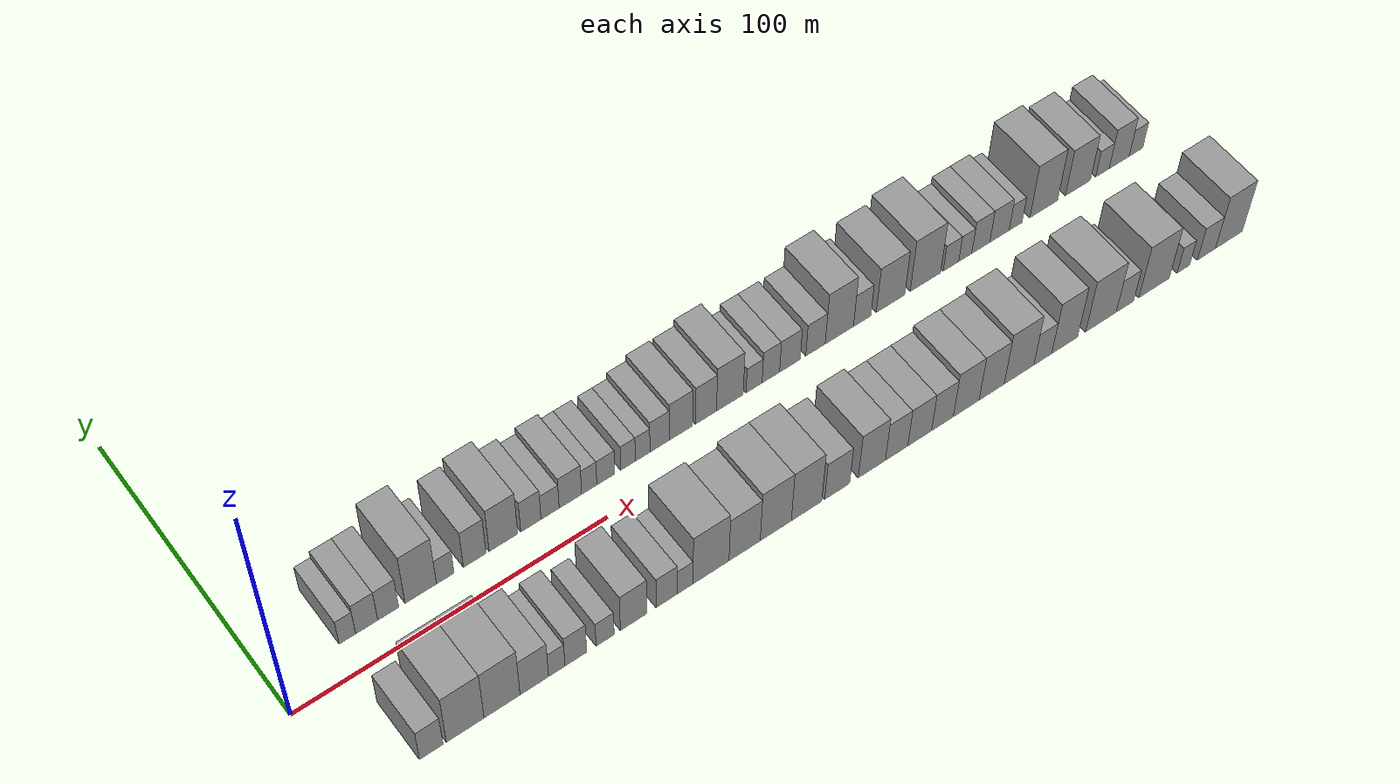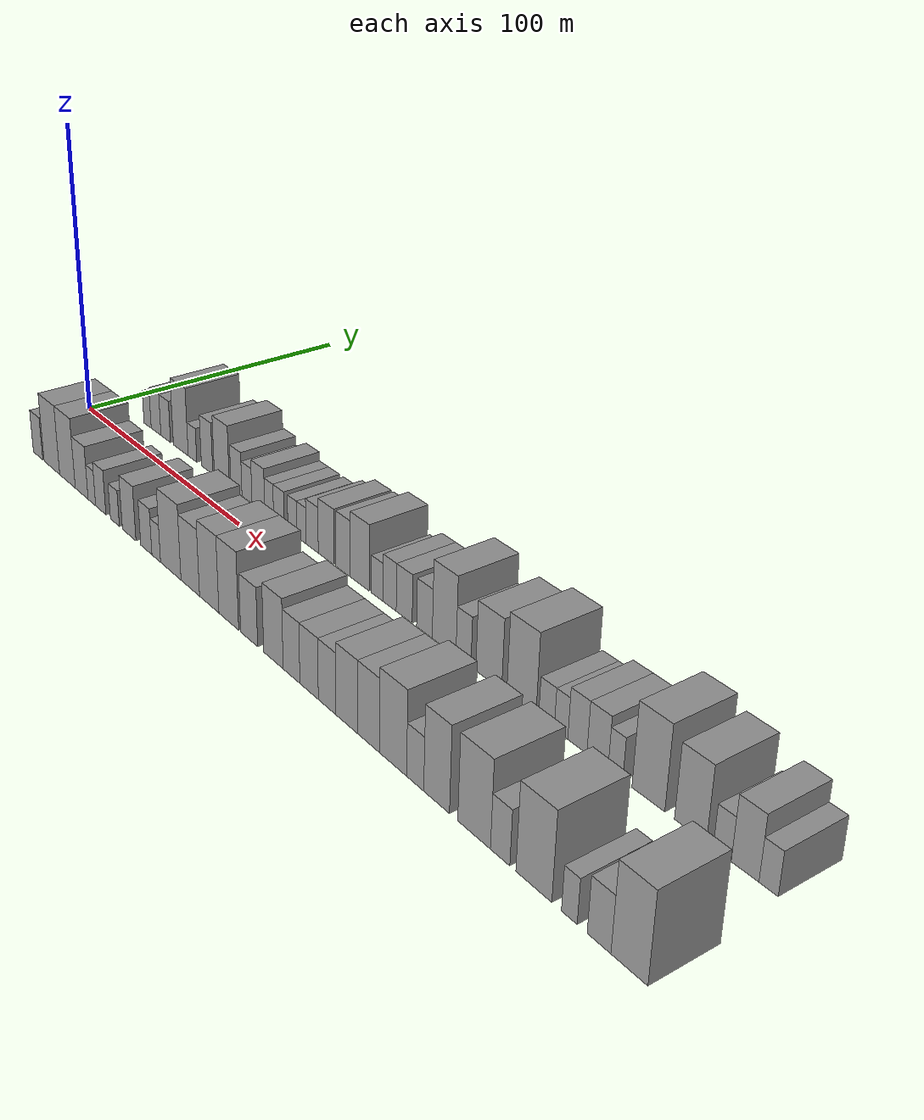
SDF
<sdf version="1.6">
 <world name="default">
  <scene>
   <sky><clouds><speed>12</speed></clouds></sky>
   <ambient>0.4 0.4 0.4 1</ambient>
   <background>0.7 0.7 0.7 1</background>
   <shadows>1</shadows>
  </scene>
  <gravity>0 0 -9.8066</gravity>
  <magnetic_field>6e-06 2.3e-05 -4.2e-05</magnetic_field>
  <physics default="0" name="default_physics" type="ode">
   <ode>
    <solver>
     <type>quick</type>
     <iters>10</iters>
     <sor>1.0</sor>
     <use_dynamic_moi_rescaling>0</use_dynamic_moi_rescaling>
    </solver>
    <constraints>
     <cfm>0</cfm>
     <erp>0.2</erp>
     <contact_max_correcting_vel>100</contact_max_correcting_vel>
     <contact_surface_layer>0.001</contact_surface_layer>
    </constraints>
   </ode>
   <max_step_size>0.004</max_step_size>
   <real_time_factor>1</real_time_factor>
   <real_time_update_rate>250</real_time_update_rate>
  </physics>
  <light name="sun" type="directional">
   <pose>0 0 10 0 0 0</pose>
   <diffuse>0.8 0.8 0.8 1</diffuse>
   <specular>0.2 0.2 0.2 1</specular>
   <attenuation>
    <range>1000</range>
    <constant>0.9</constant>
    <linear>0.01</linear>
    <quadratic>0.001</quadratic>
   </attenuation>
   <direction>-0.5 0.1 -0.9</direction>
  </light>
  <model name="building_1">
   <static>1</static>
   <pose>23.5452 20.0000 0 0.000000 0.000000 1.570796</pose>
   <link name="link">
    <pose>0 0 6.00 0 0 0</pose>
    <collision name="collision"><geometry><box><size>20.0000 5.0905 12.0000</size></box></geometry></collision>
    <visual name="visual">
     <cast_shadows>0</cast_shadows>
     <geometry><box><size>20.0000 5.0905 12.0000</size></box></geometry>
     <material>
      <script>
       <uri>model://grey_wall/materials/scripts</uri>
       <uri>model://grey_wall/materials/textures</uri>
       <name>vrc/grey_wall</name>
      </script>
     </material>
    </visual>
   </link>
  </model>
  <model name="building_2">
   <static>1</static>
   <pose>29.5083 20.0000 0 0.000000 0.000000 1.570796</pose>
   <link name="link">
    <pose>0 0 7.50 0 0 0</pose>
    <collision name="collision"><geometry><box><size>20.0000 6.8357 15.0000</size></box></geometry></collision>
    <visual name="visual">
     <cast_shadows>0</cast_shadows>
     <geometry><box><size>20.0000 6.8357 15.0000</size></box></geometry>
     <material>
      <script>
       <uri>model://grey_wall/materials/scripts</uri>
       <uri>model://grey_wall/materials/textures</uri>
       <name>vrc/grey_wall</name>
      </script>
     </material>
    </visual>
   </link>
  </model>
  <model name="building_3">
   <static>1</static>
   <pose>36.2058 20.0000 0 0.000000 0.000000 1.570796</pose>
   <link name="link">
    <pose>0 0 7.50 0 0 0</pose>
    <collision name="collision"><geometry><box><size>20.0000 6.5593 15.0000</size></box></geometry></collision>
    <visual name="visual">
     <cast_shadows>0</cast_shadows>
     <geometry><box><size>20.0000 6.5593 15.0000</size></box></geometry>
     <material>
      <script>
       <uri>model://grey_wall/materials/scripts</uri>
       <uri>model://grey_wall/materials/textures</uri>
       <name>vrc/grey_wall</name>
      </script>
     </material>
    </visual>
   </link>
  </model>
  <model name="building_4">
   <static>1</static>
   <pose>46.4267 20.0000 0 0.000000 0.000000 1.570796</pose>
   <link name="link">
    <pose>0 0 12.00 0 0 0</pose>
    <collision name="collision"><geometry><box><size>20.0000 9.8826 24.0000</size></box></geometry></collision>
    <visual name="visual">
     <cast_shadows>0</cast_shadows>
     <geometry><box><size>20.0000 9.8826 24.0000</size></box></geometry>
     <material>
      <script>
       <uri>model://grey_wall/materials/scripts</uri>
       <uri>model://grey_wall/materials/textures</uri>
       <name>vrc/grey_wall</name>
      </script>
     </material>
    </visual>
   </link>
  </model>
  <model name="building_5">
   <static>1</static>
   <pose>54.1531 20.0000 0 0.000000 0.000000 1.570796</pose>
   <link name="link">
    <pose>0 0 6.00 0 0 0</pose>
    <collision name="collision"><geometry><box><size>20.0000 5.5703 12.0000</size></box></geometry></collision>
    <visual name="visual">
     <cast_shadows>0</cast_shadows>
     <geometry><box><size>20.0000 5.5703 12.0000</size></box></geometry>
     <material>
      <script>
       <uri>model://grey_wall/materials/scripts</uri>
       <uri>model://grey_wall/materials/textures</uri>
       <name>vrc/grey_wall</name>
      </script>
     </material>
    </visual>
   </link>
  </model>
  <model name="building_6">
   <static>1</static>
   <pose>63.5615 20.0000 0 0.000000 0.000000 1.570796</pose>
   <link name="link">
    <pose>0 0 9.00 0 0 0</pose>
    <collision name="collision"><geometry><box><size>20.0000 7.2466 18.0000</size></box></geometry></collision>
    <visual name="visual">
     <cast_shadows>0</cast_shadows>
     <geometry><box><size>20.0000 7.2466 18.0000</size></box></geometry>
     <material>
      <script>
       <uri>model://grey_wall/materials/scripts</uri>
       <uri>model://grey_wall/materials/textures</uri>
       <name>vrc/grey_wall</name>
      </script>
     </material>
    </visual>
   </link>
  </model>
  <model name="building_7">
   <static>1</static>
   <pose>72.8070 20.0000 0 0.000000 0.000000 1.570796</pose>
   <link name="link">
    <pose>0 0 10.50 0 0 0</pose>
    <collision name="collision"><geometry><box><size>20.0000 9.2444 21.0000</size></box></geometry></collision>
    <visual name="visual">
     <cast_shadows>0</cast_shadows>
     <geometry><box><size>20.0000 9.2444 21.0000</size></box></geometry>
     <material>
      <script>
       <uri>model://grey_wall/materials/scripts</uri>
       <uri>model://grey_wall/materials/textures</uri>
       <name>vrc/grey_wall</name>
      </script>
     </material>
    </visual>
   </link>
  </model>
  <model name="building_8">
   <static>1</static>
   <pose>81.7254 20.0000 0 0.000000 0.000000 1.570796</pose>
   <link name="link">
    <pose>0 0 7.50 0 0 0</pose>
    <collision name="collision"><geometry><box><size>20.0000 6.5924 15.0000</size></box></geometry></collision>
    <visual name="visual">
     <cast_shadows>0</cast_shadows>
     <geometry><box><size>20.0000 6.5924 15.0000</size></box></geometry>
     <material>
      <script>
       <uri>model://grey_wall/materials/scripts</uri>
       <uri>model://grey_wall/materials/textures</uri>
       <name>vrc/grey_wall</name>
      </script>
     </material>
    </visual>
   </link>
  </model>
  <model name="building_9">
   <static>1</static>
   <pose>87.9942 20.0000 0 0.000000 0.000000 1.570796</pose>
   <link name="link">
    <pose>0 0 6.00 0 0 0</pose>
    <collision name="collision"><geometry><box><size>20.0000 5.9452 12.0000</size></box></geometry></collision>
    <visual name="visual">
     <cast_shadows>0</cast_shadows>
     <geometry><box><size>20.0000 5.9452 12.0000</size></box></geometry>
     <material>
      <script>
       <uri>model://grey_wall/materials/scripts</uri>
       <uri>model://grey_wall/materials/textures</uri>
       <name>vrc/grey_wall</name>
      </script>
     </material>
    </visual>
   </link>
  </model>
  <model name="building_10">
   <static>1</static>
   <pose>94.6655 20.0000 0 0.000000 0.000000 1.570796</pose>
   <link name="link">
    <pose>0 0 7.50 0 0 0</pose>
    <collision name="collision"><geometry><box><size>20.0000 7.3974 15.0000</size></box></geometry></collision>
    <visual name="visual">
     <cast_shadows>0</cast_shadows>
     <geometry><box><size>20.0000 7.3974 15.0000</size></box></geometry>
     <material>
      <script>
       <uri>model://grey_wall/materials/scripts</uri>
       <uri>model://grey_wall/materials/textures</uri>
       <name>vrc/grey_wall</name>
      </script>
     </material>
    </visual>
   </link>
  </model>
  <model name="building_11">
   <static>1</static>
   <pose>100.8746 20.0000 0 0.000000 0.000000 1.570796</pose>
   <link name="link">
    <pose>0 0 6.00 0 0 0</pose>
    <collision name="collision"><geometry><box><size>20.0000 5.0209 12.0000</size></box></geometry></collision>
    <visual name="visual">
     <cast_shadows>0</cast_shadows>
     <geometry><box><size>20.0000 5.0209 12.0000</size></box></geometry>
     <material>
      <script>
       <uri>model://grey_wall/materials/scripts</uri>
       <uri>model://grey_wall/materials/textures</uri>
       <name>vrc/grey_wall</name>
      </script>
     </material>
    </visual>
   </link>
  </model>
  <model name="building_12">
   <static>1</static>
   <pose>106.3806 20.0000 0 0.000000 0.000000 1.570796</pose>
   <link name="link">
    <pose>0 0 6.00 0 0 0</pose>
    <collision name="collision"><geometry><box><size>20.0000 5.9910 12.0000</size></box></geometry></collision>
    <visual name="visual">
     <cast_shadows>0</cast_shadows>
     <geometry><box><size>20.0000 5.9910 12.0000</size></box></geometry>
     <material>
      <script>
       <uri>model://grey_wall/materials/scripts</uri>
       <uri>model://grey_wall/materials/textures</uri>
       <name>vrc/grey_wall</name>
      </script>
     </material>
    </visual>
   </link>
  </model>
  <model name="building_13">
   <static>1</static>
   <pose>113.8148 20.0000 0 0.000000 0.000000 1.570796</pose>
   <link name="link">
    <pose>0 0 6.00 0 0 0</pose>
    <collision name="collision"><geometry><box><size>20.0000 4.8773 12.0000</size></box></geometry></collision>
    <visual name="visual">
     <cast_shadows>0</cast_shadows>
     <geometry><box><size>20.0000 4.8773 12.0000</size></box></geometry>
     <material>
      <script>
       <uri>model://grey_wall/materials/scripts</uri>
       <uri>model://grey_wall/materials/textures</uri>
       <name>vrc/grey_wall</name>
      </script>
     </material>
    </visual>
   </link>
  </model>
  <model name="building_14">
   <static>1</static>
   <pose>118.7198 20.0000 0 0.000000 0.000000 1.570796</pose>
   <link name="link">
    <pose>0 0 6.00 0 0 0</pose>
    <collision name="collision"><geometry><box><size>20.0000 4.9327 12.0000</size></box></geometry></collision>
    <visual name="visual">
     <cast_shadows>0</cast_shadows>
     <geometry><box><size>20.0000 4.9327 12.0000</size></box></geometry>
     <material>
      <script>
       <uri>model://grey_wall/materials/scripts</uri>
       <uri>model://grey_wall/materials/textures</uri>
       <name>vrc/grey_wall</name>
      </script>
     </material>
    </visual>
   </link>
  </model>
  <model name="building_15">
   <static>1</static>
   <pose>124.4185 20.0000 0 0.000000 0.000000 1.570796</pose>
   <link name="link">
    <pose>0 0 7.50 0 0 0</pose>
    <collision name="collision"><geometry><box><size>20.0000 6.4647 15.0000</size></box></geometry></collision>
    <visual name="visual">
     <cast_shadows>0</cast_shadows>
     <geometry><box><size>20.0000 6.4647 15.0000</size></box></geometry>
     <material>
      <script>
       <uri>model://grey_wall/materials/scripts</uri>
       <uri>model://grey_wall/materials/textures</uri>
       <name>vrc/grey_wall</name>
      </script>
     </material>
    </visual>
   </link>
  </model>
  <model name="building_16">
   <static>1</static>
   <pose>131.6639 20.0000 0 0.000000 0.000000 1.570796</pose>
   <link name="link">
    <pose>0 0 9.00 0 0 0</pose>
    <collision name="collision"><geometry><box><size>20.0000 8.0261 18.0000</size></box></geometry></collision>
    <visual name="visual">
     <cast_shadows>0</cast_shadows>
     <geometry><box><size>20.0000 8.0261 18.0000</size></box></geometry>
     <material>
      <script>
       <uri>model://grey_wall/materials/scripts</uri>
       <uri>model://grey_wall/materials/textures</uri>
       <name>vrc/grey_wall</name>
      </script>
     </material>
    </visual>
   </link>
  </model>
  <model name="building_17">
   <static>1</static>
   <pose>140.2846 20.0000 0 0.000000 0.000000 1.570796</pose>
   <link name="link">
    <pose>0 0 9.00 0 0 0</pose>
    <collision name="collision"><geometry><box><size>20.0000 7.2153 18.0000</size></box></geometry></collision>
    <visual name="visual">
     <cast_shadows>0</cast_shadows>
     <geometry><box><size>20.0000 7.2153 18.0000</size></box></geometry>
     <material>
      <script>
       <uri>model://grey_wall/materials/scripts</uri>
       <uri>model://grey_wall/materials/textures</uri>
       <name>vrc/grey_wall</name>
      </script>
     </material>
    </visual>
   </link>
  </model>
  <model name="building_18">
   <static>1</static>
   <pose>148.5197 20.0000 0 0.000000 0.000000 1.570796</pose>
   <link name="link">
    <pose>0 0 10.50 0 0 0</pose>
    <collision name="collision"><geometry><box><size>20.0000 9.2550 21.0000</size></box></geometry></collision>
    <visual name="visual">
     <cast_shadows>0</cast_shadows>
     <geometry><box><size>20.0000 9.2550 21.0000</size></box></geometry>
     <material>
      <script>
       <uri>model://grey_wall/materials/scripts</uri>
       <uri>model://grey_wall/materials/textures</uri>
       <name>vrc/grey_wall</name>
      </script>
     </material>
    </visual>
   </link>
  </model>
  <model name="building_19">
   <static>1</static>
   <pose>156.9476 20.0000 0 0.000000 0.000000 1.570796</pose>
   <link name="link">
    <pose>0 0 6.00 0 0 0</pose>
    <collision name="collision"><geometry><box><size>20.0000 5.6008 12.0000</size></box></geometry></collision>
    <visual name="visual">
     <cast_shadows>0</cast_shadows>
     <geometry><box><size>20.0000 5.6008 12.0000</size></box></geometry>
     <material>
      <script>
       <uri>model://grey_wall/materials/scripts</uri>
       <uri>model://grey_wall/materials/textures</uri>
       <name>vrc/grey_wall</name>
      </script>
     </material>
    </visual>
   </link>
  </model>
  <model name="building_20">
   <static>1</static>
   <pose>162.8189 20.0000 0 0.000000 0.000000 1.570796</pose>
   <link name="link">
    <pose>0 0 7.50 0 0 0</pose>
    <collision name="collision"><geometry><box><size>20.0000 6.1417 15.0000</size></box></geometry></collision>
    <visual name="visual">
     <cast_shadows>0</cast_shadows>
     <geometry><box><size>20.0000 6.1417 15.0000</size></box></geometry>
     <material>
      <script>
       <uri>model://grey_wall/materials/scripts</uri>
       <uri>model://grey_wall/materials/textures</uri>
       <name>vrc/grey_wall</name>
      </script>
     </material>
    </visual>
   </link>
  </model>
  <model name="building_21">
   <static>1</static>
   <pose>169.5122 20.0000 0 0.000000 0.000000 1.570796</pose>
   <link name="link">
    <pose>0 0 7.50 0 0 0</pose>
    <collision name="collision"><geometry><box><size>20.0000 7.2449 15.0000</size></box></geometry></collision>
    <visual name="visual">
     <cast_shadows>0</cast_shadows>
     <geometry><box><size>20.0000 7.2449 15.0000</size></box></geometry>
     <material>
      <script>
       <uri>model://grey_wall/materials/scripts</uri>
       <uri>model://grey_wall/materials/textures</uri>
       <name>vrc/grey_wall</name>
      </script>
     </material>
    </visual>
   </link>
  </model>
  <model name="building_22">
   <static>1</static>
   <pose>178.5858 20.0000 0 0.000000 0.000000 1.570796</pose>
   <link name="link">
    <pose>0 0 7.50 0 0 0</pose>
    <collision name="collision"><geometry><box><size>20.0000 6.9025 15.0000</size></box></geometry></collision>
    <visual name="visual">
     <cast_shadows>0</cast_shadows>
     <geometry><box><size>20.0000 6.9025 15.0000</size></box></geometry>
     <material>
      <script>
       <uri>model://grey_wall/materials/scripts</uri>
       <uri>model://grey_wall/materials/textures</uri>
       <name>vrc/grey_wall</name>
      </script>
     </material>
    </visual>
   </link>
  </model>
  <model name="building_23">
   <static>1</static>
   <pose>187.1096 20.0000 0 0.000000 0.000000 1.570796</pose>
   <link name="link">
    <pose>0 0 12.00 0 0 0</pose>
    <collision name="collision"><geometry><box><size>20.0000 10.1450 24.0000</size></box></geometry></collision>
    <visual name="visual">
     <cast_shadows>0</cast_shadows>
     <geometry><box><size>20.0000 10.1450 24.0000</size></box></geometry>
     <material>
      <script>
       <uri>model://grey_wall/materials/scripts</uri>
       <uri>model://grey_wall/materials/textures</uri>
       <name>vrc/grey_wall</name>
      </script>
     </material>
    </visual>
   </link>
  </model>
  <model name="building_24">
   <static>1</static>
   <pose>195.2996 20.0000 0 0.000000 0.000000 1.570796</pose>
   <link name="link">
    <pose>0 0 7.50 0 0 0</pose>
    <collision name="collision"><geometry><box><size>20.0000 6.2351 15.0000</size></box></geometry></collision>
    <visual name="visual">
     <cast_shadows>0</cast_shadows>
     <geometry><box><size>20.0000 6.2351 15.0000</size></box></geometry>
     <material>
      <script>
       <uri>model://grey_wall/materials/scripts</uri>
       <uri>model://grey_wall/materials/textures</uri>
       <name>vrc/grey_wall</name>
      </script>
     </material>
    </visual>
   </link>
  </model>
  <model name="building_25">
   <static>1</static>
   <pose>205.6078 20.0000 0 0.000000 0.000000 1.570796</pose>
   <link name="link">
    <pose>0 0 10.50 0 0 0</pose>
    <collision name="collision"><geometry><box><size>20.0000 10.3812 21.0000</size></box></geometry></collision>
    <visual name="visual">
     <cast_shadows>0</cast_shadows>
     <geometry><box><size>20.0000 10.3812 21.0000</size></box></geometry>
     <material>
      <script>
       <uri>model://grey_wall/materials/scripts</uri>
       <uri>model://grey_wall/materials/textures</uri>
       <name>vrc/grey_wall</name>
      </script>
     </material>
    </visual>
   </link>
  </model>
  <model name="building_26">
   <static>1</static>
   <pose>218.3820 20.0000 0 0.000000 0.000000 1.570796</pose>
   <link name="link">
    <pose>0 0 12.00 0 0 0</pose>
    <collision name="collision"><geometry><box><size>20.0000 11.1672 24.0000</size></box></geometry></collision>
    <visual name="visual">
     <cast_shadows>0</cast_shadows>
     <geometry><box><size>20.0000 11.1672 24.0000</size></box></geometry>
     <material>
      <script>
       <uri>model://grey_wall/materials/scripts</uri>
       <uri>model://grey_wall/materials/textures</uri>
       <name>vrc/grey_wall</name>
      </script>
     </material>
    </visual>
   </link>
  </model>
  <model name="building_27">
   <static>1</static>
   <pose>227.8419 20.0000 0 0.000000 0.000000 1.570796</pose>
   <link name="link">
    <pose>0 0 6.00 0 0 0</pose>
    <collision name="collision"><geometry><box><size>20.0000 5.7525 12.0000</size></box></geometry></collision>
    <visual name="visual">
     <cast_shadows>0</cast_shadows>
     <geometry><box><size>20.0000 5.7525 12.0000</size></box></geometry>
     <material>
      <script>
       <uri>model://grey_wall/materials/scripts</uri>
       <uri>model://grey_wall/materials/textures</uri>
       <name>vrc/grey_wall</name>
      </script>
     </material>
    </visual>
   </link>
  </model>
  <model name="building_28">
   <static>1</static>
   <pose>233.1549 20.0000 0 0.000000 0.000000 1.570796</pose>
   <link name="link">
    <pose>0 0 6.00 0 0 0</pose>
    <collision name="collision"><geometry><box><size>20.0000 4.8735 12.0000</size></box></geometry></collision>
    <visual name="visual">
     <cast_shadows>0</cast_shadows>
     <geometry><box><size>20.0000 4.8735 12.0000</size></box></geometry>
     <material>
      <script>
       <uri>model://grey_wall/materials/scripts</uri>
       <uri>model://grey_wall/materials/textures</uri>
       <name>vrc/grey_wall</name>
      </script>
     </material>
    </visual>
   </link>
  </model>
  <model name="building_29">
   <static>1</static>
   <pose>238.9770 20.0000 0 0.000000 0.000000 1.570796</pose>
   <link name="link">
    <pose>0 0 7.50 0 0 0</pose>
    <collision name="collision"><geometry><box><size>20.0000 6.7708 15.0000</size></box></geometry></collision>
    <visual name="visual">
     <cast_shadows>0</cast_shadows>
     <geometry><box><size>20.0000 6.7708 15.0000</size></box></geometry>
     <material>
      <script>
       <uri>model://grey_wall/materials/scripts</uri>
       <uri>model://grey_wall/materials/textures</uri>
       <name>vrc/grey_wall</name>
      </script>
     </material>
    </visual>
   </link>
  </model>
  <model name="building_30">
   <static>1</static>
   <pose>245.9957 20.0000 0 0.000000 0.000000 1.570796</pose>
   <link name="link">
    <pose>0 0 7.50 0 0 0</pose>
    <collision name="collision"><geometry><box><size>20.0000 7.2665 15.0000</size></box></geometry></collision>
    <visual name="visual">
     <cast_shadows>0</cast_shadows>
     <geometry><box><size>20.0000 7.2665 15.0000</size></box></geometry>
     <material>
      <script>
       <uri>model://grey_wall/materials/scripts</uri>
       <uri>model://grey_wall/materials/textures</uri>
       <name>vrc/grey_wall</name>
      </script>
     </material>
    </visual>
   </link>
  </model>
  <model name="building_31">
   <static>1</static>
   <pose>252.1011 20.0000 0 0.000000 0.000000 1.570796</pose>
   <link name="link">
    <pose>0 0 6.00 0 0 0</pose>
    <collision name="collision"><geometry><box><size>20.0000 4.9444 12.0000</size></box></geometry></collision>
    <visual name="visual">
     <cast_shadows>0</cast_shadows>
     <geometry><box><size>20.0000 4.9444 12.0000</size></box></geometry>
     <material>
      <script>
       <uri>model://grey_wall/materials/scripts</uri>
       <uri>model://grey_wall/materials/textures</uri>
       <name>vrc/grey_wall</name>
      </script>
     </material>
    </visual>
   </link>
  </model>
  <model name="building_32">
   <static>1</static>
   <pose>262.8687 20.0000 0 0.000000 0.000000 1.570796</pose>
   <link name="link">
    <pose>0 0 12.00 0 0 0</pose>
    <collision name="collision"><geometry><box><size>20.0000 10.5908 24.0000</size></box></geometry></collision>
    <visual name="visual">
     <cast_shadows>0</cast_shadows>
     <geometry><box><size>20.0000 10.5908 24.0000</size></box></geometry>
     <material>
      <script>
       <uri>model://grey_wall/materials/scripts</uri>
       <uri>model://grey_wall/materials/textures</uri>
       <name>vrc/grey_wall</name>
      </script>
     </material>
    </visual>
   </link>
  </model>
  <model name="building_33">
   <static>1</static>
   <pose>276.0314 20.0000 0 0.000000 0.000000 1.570796</pose>
   <link name="link">
    <pose>0 0 10.50 0 0 0</pose>
    <collision name="collision"><geometry><box><size>20.0000 9.7345 21.0000</size></box></geometry></collision>
    <visual name="visual">
     <cast_shadows>0</cast_shadows>
     <geometry><box><size>20.0000 9.7345 21.0000</size></box></geometry>
     <material>
      <script>
       <uri>model://grey_wall/materials/scripts</uri>
       <uri>model://grey_wall/materials/textures</uri>
       <name>vrc/grey_wall</name>
      </script>
     </material>
    </visual>
   </link>
  </model>
  <model name="building_34">
   <static>1</static>
   <pose>285.5381 20.0000 0 0.000000 0.000000 1.570796</pose>
   <link name="link">
    <pose>0 0 6.00 0 0 0</pose>
    <collision name="collision"><geometry><box><size>20.0000 5.2789 12.0000</size></box></geometry></collision>
    <visual name="visual">
     <cast_shadows>0</cast_shadows>
     <geometry><box><size>20.0000 5.2789 12.0000</size></box></geometry>
     <material>
      <script>
       <uri>model://grey_wall/materials/scripts</uri>
       <uri>model://grey_wall/materials/textures</uri>
       <name>vrc/grey_wall</name>
      </script>
     </material>
    </visual>
   </link>
  </model>
  <model name="building_35">
   <static>1</static>
   <pose>292.1135 20.0000 0 0.000000 0.000000 1.570796</pose>
   <link name="link">
    <pose>0 0 9.00 0 0 0</pose>
    <collision name="collision"><geometry><box><size>20.0000 7.8719 18.0000</size></box></geometry></collision>
    <visual name="visual">
     <cast_shadows>0</cast_shadows>
     <geometry><box><size>20.0000 7.8719 18.0000</size></box></geometry>
     <material>
      <script>
       <uri>model://grey_wall/materials/scripts</uri>
       <uri>model://grey_wall/materials/textures</uri>
       <name>vrc/grey_wall</name>
      </script>
     </material>
    </visual>
   </link>
  </model>
  <model name="building_36">
   <static>1</static>
   <pose>298.7198 20.0000 0 0.000000 0.000000 1.570796</pose>
   <link name="link">
    <pose>0 0 6.00 0 0 0</pose>
    <collision name="collision"><geometry><box><size>20.0000 5.3409 12.0000</size></box></geometry></collision>
    <visual name="visual">
     <cast_shadows>0</cast_shadows>
     <geometry><box><size>20.0000 5.3409 12.0000</size></box></geometry>
     <material>
      <script>
       <uri>model://grey_wall/materials/scripts</uri>
       <uri>model://grey_wall/materials/textures</uri>
       <name>vrc/grey_wall</name>
      </script>
     </material>
    </visual>
   </link>
  </model>
  <model name="building_37">
   <static>1</static>
   <pose>23.5860 -20.0000 0 0.000000 0.000000 1.570796</pose>
   <link name="link">
    <pose>0 0 7.50 0 0 0</pose>
    <collision name="collision"><geometry><box><size>20.0000 7.1719 15.0000</size></box></geometry></collision>
    <visual name="visual">
     <cast_shadows>0</cast_shadows>
     <geometry><box><size>20.0000 7.1719 15.0000</size></box></geometry>
     <material>
      <script>
       <uri>model://grey_wall/materials/scripts</uri>
       <uri>model://grey_wall/materials/textures</uri>
       <name>vrc/grey_wall</name>
      </script>
     </material>
    </visual>
   </link>
  </model>
  <model name="building_38">
   <static>1</static>
   <pose>33.9682 -20.0000 0 0.000000 0.000000 1.570796</pose>
   <link name="link">
    <pose>0 0 12.00 0 0 0</pose>
    <collision name="collision"><geometry><box><size>20.0000 11.5924 24.0000</size></box></geometry></collision>
    <visual name="visual">
     <cast_shadows>0</cast_shadows>
     <geometry><box><size>20.0000 11.5924 24.0000</size></box></geometry>
     <material>
      <script>
       <uri>model://grey_wall/materials/scripts</uri>
       <uri>model://grey_wall/materials/textures</uri>
       <name>vrc/grey_wall</name>
      </script>
     </material>
    </visual>
   </link>
  </model>
  <model name="building_39">
   <static>1</static>
   <pose>45.3698 -20.0000 0 0.000000 0.000000 1.570796</pose>
   <link name="link">
    <pose>0 0 12.00 0 0 0</pose>
    <collision name="collision"><geometry><box><size>20.0000 11.2108 24.0000</size></box></geometry></collision>
    <visual name="visual">
     <cast_shadows>0</cast_shadows>
     <geometry><box><size>20.0000 11.2108 24.0000</size></box></geometry>
     <material>
      <script>
       <uri>model://grey_wall/materials/scripts</uri>
       <uri>model://grey_wall/materials/textures</uri>
       <name>vrc/grey_wall</name>
      </script>
     </material>
    </visual>
   </link>
  </model>
  <model name="building_40">
   <static>1</static>
   <pose>55.4457 -20.0000 0 0.000000 0.000000 1.570796</pose>
   <link name="link">
    <pose>0 0 9.00 0 0 0</pose>
    <collision name="collision"><geometry><box><size>20.0000 8.9409 18.0000</size></box></geometry></collision>
    <visual name="visual">
     <cast_shadows>0</cast_shadows>
     <geometry><box><size>20.0000 8.9409 18.0000</size></box></geometry>
     <material>
      <script>
       <uri>model://grey_wall/materials/scripts</uri>
       <uri>model://grey_wall/materials/textures</uri>
       <name>vrc/grey_wall</name>
      </script>
     </material>
    </visual>
   </link>
  </model>
  <model name="building_41">
   <static>1</static>
   <pose>62.4994 -20.0000 0 0.000000 0.000000 1.570796</pose>
   <link name="link">
    <pose>0 0 6.00 0 0 0</pose>
    <collision name="collision"><geometry><box><size>20.0000 5.1665 12.0000</size></box></geometry></collision>
    <visual name="visual">
     <cast_shadows>0</cast_shadows>
     <geometry><box><size>20.0000 5.1665 12.0000</size></box></geometry>
     <material>
      <script>
       <uri>model://grey_wall/materials/scripts</uri>
       <uri>model://grey_wall/materials/textures</uri>
       <name>vrc/grey_wall</name>
      </script>
     </material>
    </visual>
   </link>
  </model>
  <model name="building_42">
   <static>1</static>
   <pose>68.5233 -20.0000 0 0.000000 0.000000 1.570796</pose>
   <link name="link">
    <pose>0 0 7.50 0 0 0</pose>
    <collision name="collision"><geometry><box><size>20.0000 6.8814 15.0000</size></box></geometry></collision>
    <visual name="visual">
     <cast_shadows>0</cast_shadows>
     <geometry><box><size>20.0000 6.8814 15.0000</size></box></geometry>
     <material>
      <script>
       <uri>model://grey_wall/materials/scripts</uri>
       <uri>model://grey_wall/materials/textures</uri>
       <name>vrc/grey_wall</name>
      </script>
     </material>
    </visual>
   </link>
  </model>
  <model name="building_43">
   <static>1</static>
   <pose>77.8612 -20.0000 0 0.000000 0.000000 1.570796</pose>
   <link name="link">
    <pose>0 0 6.00 0 0 0</pose>
    <collision name="collision"><geometry><box><size>20.0000 5.7943 12.0000</size></box></geometry></collision>
    <visual name="visual">
     <cast_shadows>0</cast_shadows>
     <geometry><box><size>20.0000 5.7943 12.0000</size></box></geometry>
     <material>
      <script>
       <uri>model://grey_wall/materials/scripts</uri>
       <uri>model://grey_wall/materials/textures</uri>
       <name>vrc/grey_wall</name>
      </script>
     </material>
    </visual>
   </link>
  </model>
  <model name="building_44">
   <static>1</static>
   <pose>87.0350 -20.0000 0 0.000000 0.000000 1.570796</pose>
   <link name="link">
    <pose>0 0 9.00 0 0 0</pose>
    <collision name="collision"><geometry><box><size>20.0000 8.5533 18.0000</size></box></geometry></collision>
    <visual name="visual">
     <cast_shadows>0</cast_shadows>
     <geometry><box><size>20.0000 8.5533 18.0000</size></box></geometry>
     <material>
      <script>
       <uri>model://grey_wall/materials/scripts</uri>
       <uri>model://grey_wall/materials/textures</uri>
       <name>vrc/grey_wall</name>
      </script>
     </material>
    </visual>
   </link>
  </model>
  <model name="building_45">
   <static>1</static>
   <pose>97.7289 -20.0000 0 0.000000 0.000000 1.570796</pose>
   <link name="link">
    <pose>0 0 7.50 0 0 0</pose>
    <collision name="collision"><geometry><box><size>20.0000 6.8347 15.0000</size></box></geometry></collision>
    <visual name="visual">
     <cast_shadows>0</cast_shadows>
     <geometry><box><size>20.0000 6.8347 15.0000</size></box></geometry>
     <material>
      <script>
       <uri>model://grey_wall/materials/scripts</uri>
       <uri>model://grey_wall/materials/textures</uri>
       <name>vrc/grey_wall</name>
      </script>
     </material>
    </visual>
   </link>
  </model>
  <model name="building_46">
   <static>1</static>
   <pose>103.7473 -20.0000 0 0.000000 0.000000 1.570796</pose>
   <link name="link">
    <pose>0 0 6.00 0 0 0</pose>
    <collision name="collision"><geometry><box><size>20.0000 5.2019 12.0000</size></box></geometry></collision>
    <visual name="visual">
     <cast_shadows>0</cast_shadows>
     <geometry><box><size>20.0000 5.2019 12.0000</size></box></geometry>
     <material>
      <script>
       <uri>model://grey_wall/materials/scripts</uri>
       <uri>model://grey_wall/materials/textures</uri>
       <name>vrc/grey_wall</name>
      </script>
     </material>
    </visual>
   </link>
  </model>
  <model name="building_47">
   <static>1</static>
   <pose>112.3276 -20.0000 0 0.000000 0.000000 1.570796</pose>
   <link name="link">
    <pose>0 0 12.00 0 0 0</pose>
    <collision name="collision"><geometry><box><size>20.0000 11.9588 24.0000</size></box></geometry></collision>
    <visual name="visual">
     <cast_shadows>0</cast_shadows>
     <geometry><box><size>20.0000 11.9588 24.0000</size></box></geometry>
     <material>
      <script>
       <uri>model://grey_wall/materials/scripts</uri>
       <uri>model://grey_wall/materials/textures</uri>
       <name>vrc/grey_wall</name>
      </script>
     </material>
    </visual>
   </link>
  </model>
  <model name="building_48">
   <static>1</static>
   <pose>123.5401 -20.0000 0 0.000000 0.000000 1.570796</pose>
   <link name="link">
    <pose>0 0 10.50 0 0 0</pose>
    <collision name="collision"><geometry><box><size>20.0000 10.4661 21.0000</size></box></geometry></collision>
    <visual name="visual">
     <cast_shadows>0</cast_shadows>
     <geometry><box><size>20.0000 10.4661 21.0000</size></box></geometry>
     <material>
      <script>
       <uri>model://grey_wall/materials/scripts</uri>
       <uri>model://grey_wall/materials/textures</uri>
       <name>vrc/grey_wall</name>
      </script>
     </material>
    </visual>
   </link>
  </model>
  <model name="building_49">
   <static>1</static>
   <pose>134.0333 -20.0000 0 0.000000 0.000000 1.570796</pose>
   <link name="link">
    <pose>0 0 12.00 0 0 0</pose>
    <collision name="collision"><geometry><box><size>20.0000 10.5202 24.0000</size></box></geometry></collision>
    <visual name="visual">
     <cast_shadows>0</cast_shadows>
     <geometry><box><size>20.0000 10.5202 24.0000</size></box></geometry>
     <material>
      <script>
       <uri>model://grey_wall/materials/scripts</uri>
       <uri>model://grey_wall/materials/textures</uri>
       <name>vrc/grey_wall</name>
      </script>
     </material>
    </visual>
   </link>
  </model>
  <model name="building_50">
   <static>1</static>
   <pose>144.4819 -20.0000 0 0.000000 0.000000 1.570796</pose>
   <link name="link">
    <pose>0 0 12.00 0 0 0</pose>
    <collision name="collision"><geometry><box><size>20.0000 10.3770 24.0000</size></box></geometry></collision>
    <visual name="visual">
     <cast_shadows>0</cast_shadows>
     <geometry><box><size>20.0000 10.3770 24.0000</size></box></geometry>
     <material>
      <script>
       <uri>model://grey_wall/materials/scripts</uri>
       <uri>model://grey_wall/materials/textures</uri>
       <name>vrc/grey_wall</name>
      </script>
     </material>
    </visual>
   </link>
  </model>
  <model name="building_51">
   <static>1</static>
   <pose>154.9707 -20.0000 0 0.000000 0.000000 1.570796</pose>
   <link name="link">
    <pose>0 0 9.00 0 0 0</pose>
    <collision name="collision"><geometry><box><size>20.0000 8.6006 18.0000</size></box></geometry></collision>
    <visual name="visual">
     <cast_shadows>0</cast_shadows>
     <geometry><box><size>20.0000 8.6006 18.0000</size></box></geometry>
     <material>
      <script>
       <uri>model://grey_wall/materials/scripts</uri>
       <uri>model://grey_wall/materials/textures</uri>
       <name>vrc/grey_wall</name>
      </script>
     </material>
    </visual>
   </link>
  </model>
  <model name="building_52">
   <static>1</static>
   <pose>166.9886 -20.0000 0 0.000000 0.000000 1.570796</pose>
   <link name="link">
    <pose>0 0 10.50 0 0 0</pose>
    <collision name="collision"><geometry><box><size>20.0000 9.4352 21.0000</size></box></geometry></collision>
    <visual name="visual">
     <cast_shadows>0</cast_shadows>
     <geometry><box><size>20.0000 9.4352 21.0000</size></box></geometry>
     <material>
      <script>
       <uri>model://grey_wall/materials/scripts</uri>
       <uri>model://grey_wall/materials/textures</uri>
       <name>vrc/grey_wall</name>
      </script>
     </material>
    </visual>
   </link>
  </model>
  <model name="building_53">
   <static>1</static>
   <pose>175.6340 -20.0000 0 0.000000 0.000000 1.570796</pose>
   <link name="link">
    <pose>0 0 9.00 0 0 0</pose>
    <collision name="collision"><geometry><box><size>20.0000 7.8556 18.0000</size></box></geometry></collision>
    <visual name="visual">
     <cast_shadows>0</cast_shadows>
     <geometry><box><size>20.0000 7.8556 18.0000</size></box></geometry>
     <material>
      <script>
       <uri>model://grey_wall/materials/scripts</uri>
       <uri>model://grey_wall/materials/textures</uri>
       <name>vrc/grey_wall</name>
      </script>
     </material>
    </visual>
   </link>
  </model>
  <model name="building_54">
   <static>1</static>
   <pose>183.7721 -20.0000 0 0.000000 0.000000 1.570796</pose>
   <link name="link">
    <pose>0 0 9.00 0 0 0</pose>
    <collision name="collision"><geometry><box><size>20.0000 8.4206 18.0000</size></box></geometry></collision>
    <visual name="visual">
     <cast_shadows>0</cast_shadows>
     <geometry><box><size>20.0000 8.4206 18.0000</size></box></geometry>
     <material>
      <script>
       <uri>model://grey_wall/materials/scripts</uri>
       <uri>model://grey_wall/materials/textures</uri>
       <name>vrc/grey_wall</name>
      </script>
     </material>
    </visual>
   </link>
  </model>
  <model name="building_55">
   <static>1</static>
   <pose>191.8454 -20.0000 0 0.000000 0.000000 1.570796</pose>
   <link name="link">
    <pose>0 0 9.00 0 0 0</pose>
    <collision name="collision"><geometry><box><size>20.0000 7.7260 18.0000</size></box></geometry></collision>
    <visual name="visual">
     <cast_shadows>0</cast_shadows>
     <geometry><box><size>20.0000 7.7260 18.0000</size></box></geometry>
     <material>
      <script>
       <uri>model://grey_wall/materials/scripts</uri>
       <uri>model://grey_wall/materials/textures</uri>
       <name>vrc/grey_wall</name>
      </script>
     </material>
    </visual>
   </link>
  </model>
  <model name="building_56">
   <static>1</static>
   <pose>200.3347 -20.0000 0 0.000000 0.000000 1.570796</pose>
   <link name="link">
    <pose>0 0 10.50 0 0 0</pose>
    <collision name="collision"><geometry><box><size>20.0000 9.2527 21.0000</size></box></geometry></collision>
    <visual name="visual">
     <cast_shadows>0</cast_shadows>
     <geometry><box><size>20.0000 9.2527 21.0000</size></box></geometry>
     <material>
      <script>
       <uri>model://grey_wall/materials/scripts</uri>
       <uri>model://grey_wall/materials/textures</uri>
       <name>vrc/grey_wall</name>
      </script>
     </material>
    </visual>
   </link>
  </model>
  <model name="building_57">
   <static>1</static>
   <pose>209.5074 -20.0000 0 0.000000 0.000000 1.570796</pose>
   <link name="link">
    <pose>0 0 10.50 0 0 0</pose>
    <collision name="collision"><geometry><box><size>20.0000 9.0927 21.0000</size></box></geometry></collision>
    <visual name="visual">
     <cast_shadows>0</cast_shadows>
     <geometry><box><size>20.0000 9.0927 21.0000</size></box></geometry>
     <material>
      <script>
       <uri>model://grey_wall/materials/scripts</uri>
       <uri>model://grey_wall/materials/textures</uri>
       <name>vrc/grey_wall</name>
      </script>
     </material>
    </visual>
   </link>
  </model>
  <model name="building_58">
   <static>1</static>
   <pose>219.4690 -20.0000 0 0.000000 0.000000 1.570796</pose>
   <link name="link">
    <pose>0 0 12.00 0 0 0</pose>
    <collision name="collision"><geometry><box><size>20.0000 10.8306 24.0000</size></box></geometry></collision>
    <visual name="visual">
     <cast_shadows>0</cast_shadows>
     <geometry><box><size>20.0000 10.8306 24.0000</size></box></geometry>
     <material>
      <script>
       <uri>model://grey_wall/materials/scripts</uri>
       <uri>model://grey_wall/materials/textures</uri>
       <name>vrc/grey_wall</name>
      </script>
     </material>
    </visual>
   </link>
  </model>
  <model name="building_59">
   <static>1</static>
   <pose>228.1884 -20.0000 0 0.000000 0.000000 1.570796</pose>
   <link name="link">
    <pose>0 0 7.50 0 0 0</pose>
    <collision name="collision"><geometry><box><size>20.0000 6.6082 15.0000</size></box></geometry></collision>
    <visual name="visual">
     <cast_shadows>0</cast_shadows>
     <geometry><box><size>20.0000 6.6082 15.0000</size></box></geometry>
     <material>
      <script>
       <uri>model://grey_wall/materials/scripts</uri>
       <uri>model://grey_wall/materials/textures</uri>
       <name>vrc/grey_wall</name>
      </script>
     </material>
    </visual>
   </link>
  </model>
  <model name="building_60">
   <static>1</static>
   <pose>236.2940 -20.0000 0 0.000000 0.000000 1.570796</pose>
   <link name="link">
    <pose>0 0 12.00 0 0 0</pose>
    <collision name="collision"><geometry><box><size>20.0000 9.6031 24.0000</size></box></geometry></collision>
    <visual name="visual">
     <cast_shadows>0</cast_shadows>
     <geometry><box><size>20.0000 9.6031 24.0000</size></box></geometry>
     <material>
      <script>
       <uri>model://grey_wall/materials/scripts</uri>
       <uri>model://grey_wall/materials/textures</uri>
       <name>vrc/grey_wall</name>
      </script>
     </material>
    </visual>
   </link>
  </model>
  <model name="building_61">
   <static>1</static>
   <pose>249.8367 -20.0000 0 0.000000 0.000000 1.570796</pose>
   <link name="link">
    <pose>0 0 12.00 0 0 0</pose>
    <collision name="collision"><geometry><box><size>20.0000 11.4823 24.0000</size></box></geometry></collision>
    <visual name="visual">
     <cast_shadows>0</cast_shadows>
     <geometry><box><size>20.0000 11.4823 24.0000</size></box></geometry>
     <material>
      <script>
       <uri>model://grey_wall/materials/scripts</uri>
       <uri>model://grey_wall/materials/textures</uri>
       <name>vrc/grey_wall</name>
      </script>
     </material>
    </visual>
   </link>
  </model>
  <model name="building_62">
   <static>1</static>
   <pose>258.8694 -20.0000 0 0.000000 0.000000 1.570796</pose>
   <link name="link">
    <pose>0 0 7.50 0 0 0</pose>
    <collision name="collision"><geometry><box><size>20.0000 6.5830 15.0000</size></box></geometry></collision>
    <visual name="visual">
     <cast_shadows>0</cast_shadows>
     <geometry><box><size>20.0000 6.5830 15.0000</size></box></geometry>
     <material>
      <script>
       <uri>model://grey_wall/materials/scripts</uri>
       <uri>model://grey_wall/materials/textures</uri>
       <name>vrc/grey_wall</name>
      </script>
     </material>
    </visual>
   </link>
  </model>
  <model name="building_63">
   <static>1</static>
   <pose>269.9667 -20.0000 0 0.000000 0.000000 1.570796</pose>
   <link name="link">
    <pose>0 0 12.00 0 0 0</pose>
    <collision name="collision"><geometry><box><size>20.0000 11.6117 24.0000</size></box></geometry></collision>
    <visual name="visual">
     <cast_shadows>0</cast_shadows>
     <geometry><box><size>20.0000 11.6117 24.0000</size></box></geometry>
     <material>
      <script>
       <uri>model://grey_wall/materials/scripts</uri>
       <uri>model://grey_wall/materials/textures</uri>
       <name>vrc/grey_wall</name>
      </script>
     </material>
    </visual>
   </link>
  </model>
  <model name="building_64">
   <static>1</static>
   <pose>281.1957 -20.0000 0 0.000000 0.000000 1.570796</pose>
   <link name="link">
    <pose>0 0 6.00 0 0 0</pose>
    <collision name="collision"><geometry><box><size>20.0000 4.8461 12.0000</size></box></geometry></collision>
    <visual name="visual">
     <cast_shadows>0</cast_shadows>
     <geometry><box><size>20.0000 4.8461 12.0000</size></box></geometry>
     <material>
      <script>
       <uri>model://grey_wall/materials/scripts</uri>
       <uri>model://grey_wall/materials/textures</uri>
       <name>vrc/grey_wall</name>
      </script>
     </material>
    </visual>
   </link>
  </model>
  <model name="building_65">
   <static>1</static>
   <pose>290.1190 -20.0000 0 0.000000 0.000000 1.570796</pose>
   <link name="link">
    <pose>0 0 7.50 0 0 0</pose>
    <collision name="collision"><geometry><box><size>20.0000 7.0005 15.0000</size></box></geometry></collision>
    <visual name="visual">
     <cast_shadows>0</cast_shadows>
     <geometry><box><size>20.0000 7.0005 15.0000</size></box></geometry>
     <material>
      <script>
       <uri>model://grey_wall/materials/scripts</uri>
       <uri>model://grey_wall/materials/textures</uri>
       <name>vrc/grey_wall</name>
      </script>
     </material>
    </visual>
   </link>
  </model>
  <model name="building_66">
   <static>1</static>
   <pose>298.8660 -20.0000 0 0.000000 0.000000 1.570796</pose>
   <link name="link">
    <pose>0 0 12.00 0 0 0</pose>
    <collision name="collision"><geometry><box><size>20.0000 10.4935 24.0000</size></box></geometry></collision>
    <visual name="visual">
     <cast_shadows>0</cast_shadows>
     <geometry><box><size>20.0000 10.4935 24.0000</size></box></geometry>
     <material>
      <script>
       <uri>model://grey_wall/materials/scripts</uri>
       <uri>model://grey_wall/materials/textures</uri>
       <name>vrc/grey_wall</name>
      </script>
     </material>
    </visual>
   </link>
  </model>
 </world>
</sdf>
